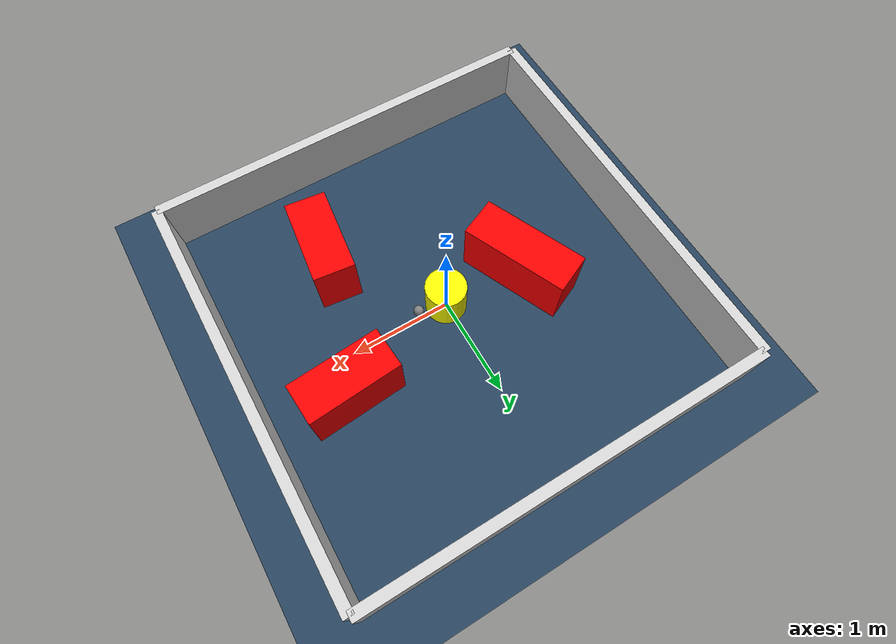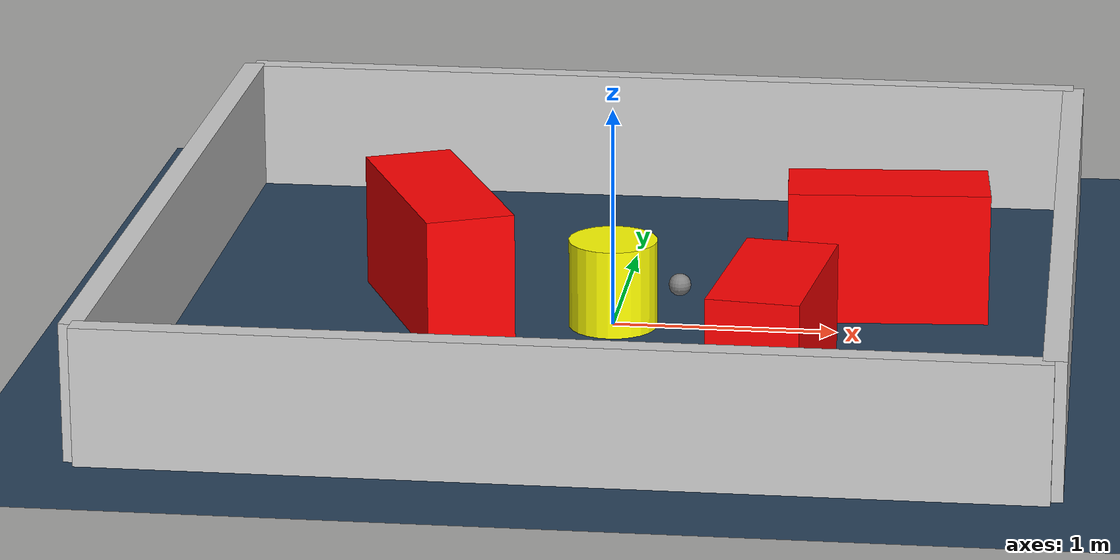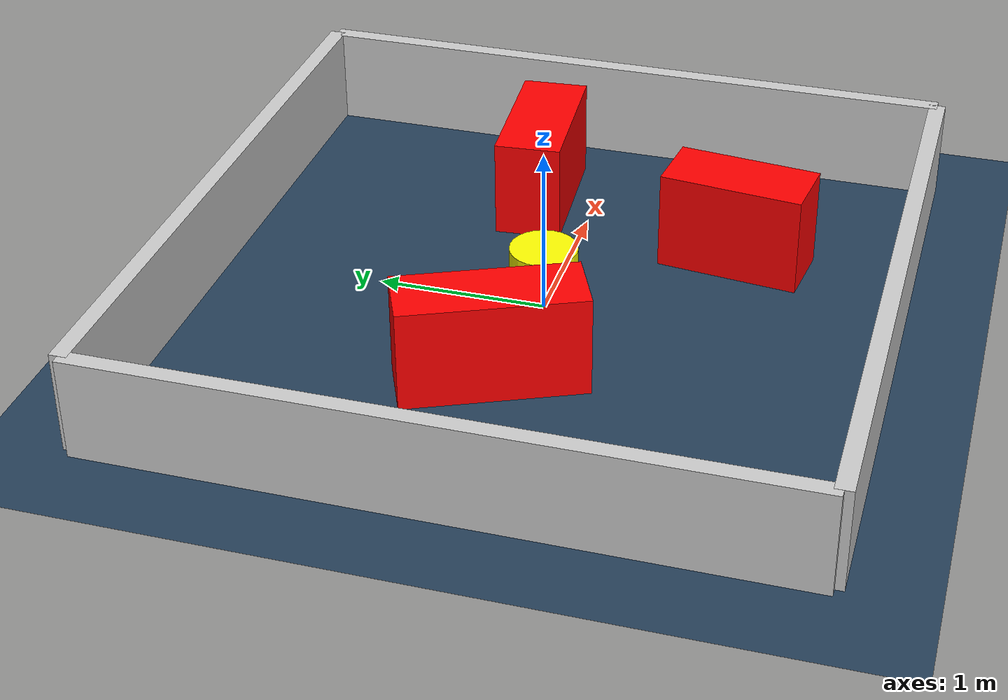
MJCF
<?xml version="1.0" ?>
<mujoco model="generated_environment">
  <option timestep="0.01" integrator="RK4" cone="elliptic"/>
  <default>
    <geom density="1"/>
  </default>
  <asset>
    <texture builtin="gradient" height="3072" rgb1="0.3 0.5 0.7" rgb2="0 0 0" type="skybox" width="512"/>
    <texture builtin="checker" height="300" mark="edge" markrgb="0.8 0.8 0.8" name="groundplane" rgb1="0.2 0.3 0.4" rgb2="0.1 0.2 0.3" type="2d" width="300"/>
    <material name="groundplane" reflectance="0.2" texrepeat="5 5" texture="groundplane" texuniform="true"/>
    <material name="robot" rgba="0.0 1.0 0.0 1"/>
  </asset>
  <worldbody>
    <light dir="0 0 -1" directional="true" pos="0 0 1.5"/>
    <geom condim="4" friction="1.0 0.005 0.001" material="groundplane" name="floor" size="0 0 0.05" type="plane"/>
    <body name="walls">
      <geom name="wall_1" condim="4" pos="-2.0 0.0 0.3" rgba="0.800000011920929 0.800000011920929 0.800000011920929 1.0" size="0.05 2.0 0.3" type="box"/>
      <geom name="wall_2" condim="4" pos="2.0 0.0 0.3" rgba="0.800000011920929 0.800000011920929 0.800000011920929 1.0" size="0.05 2.0 0.3" type="box"/>
      <geom name="wall_3" condim="4" pos="0.0 -2.0 0.3" rgba="0.800000011920929 0.800000011920929 0.800000011920929 1.0" size="2.0 0.05 0.3" type="box"/>
      <geom name="wall_4" condim="4" pos="0.0 2.0 0.3" rgba="0.800000011920929 0.800000011920929 0.800000011920929 1.0" size="2.0 0.05 0.3" type="box"/>
    </body>
    <body name="robot">
      <joint name="joint_x" type="slide" pos="0 0 0" axis="1 0 0"/>
      <joint name="joint_y" type="slide" pos="0 0 0" axis="0 1 0"/>
      <geom name="robot" type="sphere" pos="0.3 0.0 0.2" size="0.05" mass="5." friction="1.0 0.005 0.0001" condim="4" rgba="0.5 0.5 0.5 1.0"/>
      <site name="sensor_ball"/>
    </body>
    <body name="obstacle_movable_1">
      <geom name="obstacle_movable_1" condim="4" pos="0.0 0.0 0.2" euler="0 0 0.0" friction="1.0 0.005 0.001" rgba="1.0 1.0 0.0 1.0" size="0.2 0.2 0.0" type="cylinder" mass="0.1"/>
      <joint type="free"/>
    </body>
    <body name="obstacle_2_static">
      <geom name="obstacle_2_static" condim="4" pos="0.7902414146387904 -0.9797679720639967 0.3" euler="0 0 83.08476958166749" friction="1.0 0.005 0.001" rgba="1 0 0 1" size="0.42831382644302884 0.2 0.3" type="box"/>
    </body>
    <body name="obstacle_3_static">
      <geom name="obstacle_3_static" condim="4" pos="-0.7968124692975913 0.07799774495638934 0.3" euler="0 0 114.00983139383814" friction="1.0 0.005 0.001" rgba="1 0 0 1" size="0.5290471292112894 0.2 0.3" type="box"/>
    </body>
    <body name="obstacle_4_static">
      <geom name="obstacle_4_static" condim="4" pos="1.2055099676938157 0.3523561897549692 0.3" euler="0 0 184.27961527535354" friction="1.0 0.005 0.001" rgba="1 0 0 1" size="0.4505312091158846 0.2 0.3" type="box"/>
    </body>
  </worldbody>
  <actuator>
    <motor name="actuator_x" joint="joint_x" gear="1" ctrlrange="-1 1"/>
    <motor name="actuator_y" joint="joint_y" gear="1" ctrlrange="-1 1"/>
  </actuator>
</mujoco>
